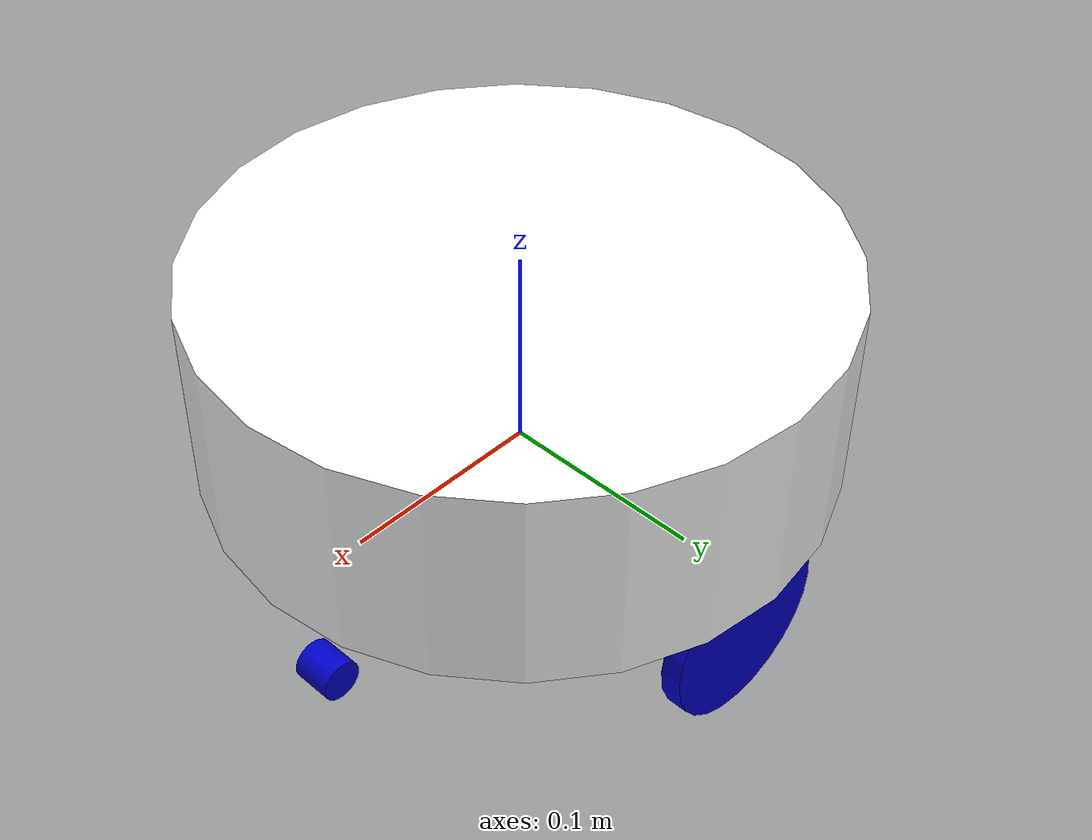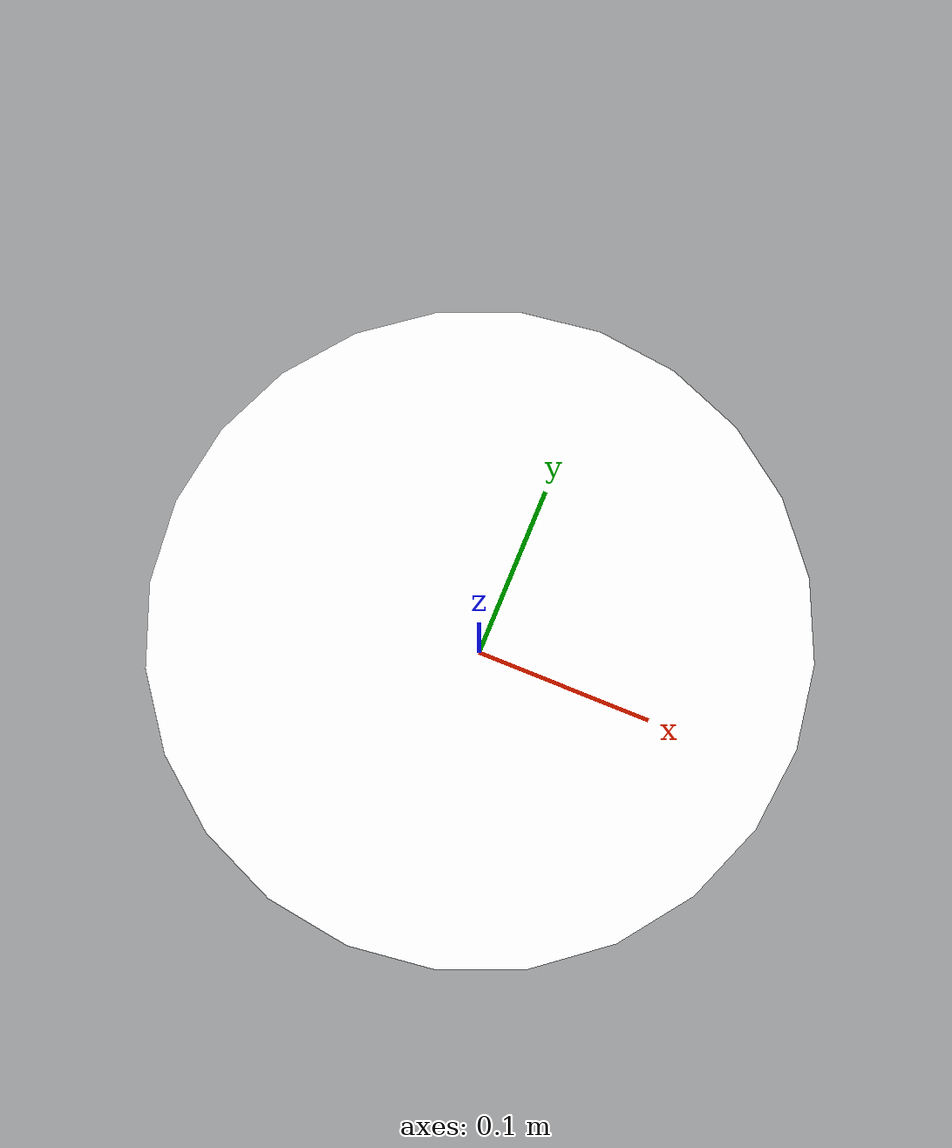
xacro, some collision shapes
<?xml version="1.0"?>
<robot name="myturtle" xmlns:xacro="httpL//ros.org/wiki/xacro">
  <xacro:include filename="$(find myturtle_description)/urdf/myturtle_base_gazebo.urdf.xacro"/>

  <xacro:property name="M_PI" value="3.1415926535897931"/>

  <xacro:property name="base_collision_height" value="0.1"/>
  <xacro:property name="base_collision_radius" value="0.15"/>
  <xacro:property name="wheel_thickness" value="0.01"/> <!-- 1 cm = 0.01 m -->
  <xacro:property name="wheel_radius" value="0.045"/> <!-- diameter = 9 cm -->
  <xacro:property name="wheels_distance" value="0.2644"/>
  <xacro:property name="wheel_center_offset" value="-0.0278"/> <!-- where center of the motor locate at relative to the base plate -->
  <xacro:property name="caster_wheels_distance" value="0.25"/>
  <xacro:property name="caster_wheel_length" value="0.02"/>
  <xacro:property name="caster_wheel_radius" value="0.01"/>
  <xacro:property name="base_offset_from_ground" value="${wheel_radius - wheel_center_offset}"/>
  <xacro:property name="caster_wheel_center_offset" value="-${base_offset_from_ground + (base_collision_height/2) - caster_wheel_radius}"/>

  <link name="base_footprint"/>
  <link name="base_link">
    <visual>
      <geometry>
        <mesh filename="package://myturtle_description/mesh/myturtle_visual.STL"/>
      </geometry>
      <origin xyz="0 0 -${base_collision_height/2}" rpy="${M_PI/2} 0 ${M_PI/2}"/>
      <material name="white">
        <color rgba="1 1 1 1"/>
      </material>
    </visual>

    <collision>
      <geometry>
        <cylinder length="${base_collision_height}" radius="${base_collision_radius}"/>
      </geometry>
    </collision>

    <inertial>
        <!-- COM experimentally determined -->
        <origin xyz="0.01 0 0"/>
        <mass value="2.4"/> <!-- 2.4/2.6 kg for small/big battery pack -->
        <inertia ixx="0.019995" ixy="0.0" ixz="0.0"
                 iyy="0.019995" iyz="0.0"
                 izz="0.03675" />
     </inertial>
  </link>

  <joint name="base_joint" type="fixed">
    <parent link="base_footprint"/>
    <child link="base_link"/>
    <origin xyz="0 0 ${base_collision_height/2}" rpy="0 0 0"/>
  </joint>

  <link name="left_wheel_link">
    <visual>
      <geometry>
        <cylinder length="${wheel_thickness}" radius="${wheel_radius}"/>
      </geometry>
      <origin xyz="0 0 0" rpy="0 0 0"/>
      <material name="blue">
        <color rgba="0 0 0.8 1"/>
      </material>
    </visual>

    <collision>
      <geometry>
        <cylinder length="${wheel_thickness}" radius="${wheel_radius}"/>
      </geometry>
      <origin xyz="0 0 0" rpy="0 0 0"/>
    </collision>

    <inertial>
        <mass value="0.01" />
        <origin xyz="0 0 0" />
        <inertia ixx="0.001" ixy="0.0" ixz="0.0"
                 iyy="0.001" iyz="0.0"
                 izz="0.001" />
    </inertial>
  </link>

  <joint name="left_wheel_joint" type="continuous">
    <parent link="base_link"/>
    <child link="left_wheel_link"/>
    <origin xyz="0 ${wheels_distance/2} ${wheel_center_offset-base_collision_height/2}" rpy="${-M_PI/2} 0 0"/>
    <axis xyz="0 0 1"/>
  </joint>

  <link name="right_wheel_link">
    <visual>
      <geometry>
        <cylinder length="${wheel_thickness}" radius="${wheel_radius}"/>
      </geometry>
      <origin xyz="0 0 0" rpy="0 0 0"/>
      <material name="blue">
        <color rgba="0 0 0.8 1"/>
      </material>
    </visual>

    <collision>
      <geometry>
        <cylinder length="${wheel_thickness}" radius="${wheel_radius}"/>
      </geometry>
      <origin xyz="0 0 0" rpy="0 0 0"/>
    </collision>

    <inertial>
        <mass value="0.01" />
        <origin xyz="0 0 0" />
        <inertia ixx="0.001" ixy="0.0" ixz="0.0"
                 iyy="0.001" iyz="0.0"
                 izz="0.001" />
    </inertial>
  </link>

  <joint name="right_wheel_joint" type="continuous">
    <parent link="base_link"/>
    <child link="right_wheel_link"/>
    <origin xyz="0 -${wheels_distance/2} ${wheel_center_offset-base_collision_height/2}" rpy="${-M_PI/2} 0 0"/>
    <axis xyz="0 0 1"/>
  </joint>

  <link name="front_caster_wheel_link">
    <visual>
      <geometry>
        <cylinder length="${caster_wheel_length}" radius="${caster_wheel_radius}"/>
      </geometry>
      <origin xyz="0 0 0" rpy="0 0 0"/>
      <material name="blue">
        <color rgba="0 0 0.8 1"/>
      </material>
    </visual>

    <collision>
      <geometry>
        <cylinder length="${caster_wheel_length}" radius="${caster_wheel_radius}"/>
      </geometry>
      <origin xyz="0 0 0" rpy="0 0 0"/>
    </collision>

    <inertial>
        <mass value="0.01" />
        <origin xyz="0 0 0" />
        <inertia ixx="0.001" ixy="0.0" ixz="0.0"
                 iyy="0.001" iyz="0.0"
                 izz="0.001" />
    </inertial>
  </link>

  <joint name="front_caster_wheel_joint" type="fixed">
    <parent link="base_link"/>
    <child link="front_caster_wheel_link"/>
    <origin xyz="${caster_wheels_distance/2} 0 ${caster_wheel_center_offset}" rpy="${M_PI/2} 0 0"/>
  </joint>

  <link name="back_caster_wheel_link">
    <visual>
      <geometry>
        <cylinder length="${caster_wheel_length}" radius="${caster_wheel_radius}"/>
      </geometry>
      <origin xyz="0 0 0" rpy="0 0 0"/>
      <material name="blue">
        <color rgba="0 0 0.8 1"/>
      </material>
    </visual>

    <collision>
      <geometry>
        <cylinder length="${caster_wheel_length}" radius="${caster_wheel_radius}"/>
      </geometry>
      <origin xyz="0 0 0" rpy="0 0 0"/>
    </collision>

    <inertial>
        <mass value="0.01" />
        <origin xyz="0 0 0" />
        <inertia ixx="0.001" ixy="0.0" ixz="0.0"
                 iyy="0.001" iyz="0.0"
                 izz="0.001" />
    </inertial>
  </link>

  <joint name="back_caster_wheel_joint" type="fixed">
    <parent link="base_link"/>
    <child link="back_caster_wheel_link"/>
    <origin xyz="-${caster_wheels_distance/2} 0 ${caster_wheel_center_offset}" rpy="${M_PI/2} 0 0"/>
  </joint>

  <!-- Kobuki's sensors -->
    <joint name="gyro_joint" type="fixed">
      <axis xyz="0 1 0"/>
      <origin xyz="0.056 0.062 0.0202" rpy="0 0 0"/>
      <parent link="base_link"/>
      <child link="gyro_link"/>
    </joint>
    <link name="gyro_link">
      <inertial>
        <mass value="0.001"/>
        <origin xyz="0 0 0" rpy="0 0 0"/>
        <inertia ixx="0.0001" ixy="0" ixz="0"
                 iyy="0.000001" iyz="0"
                 izz="0.0001"/>
      </inertial>
    </link>

    <joint name="cliff_sensor_left_joint" type="fixed">
      <origin xyz="0.08734 0.13601 0.0214" rpy="0 ${M_PI/2} 0" />
      <parent link="base_link"/>
      <child link="cliff_sensor_left_link" />
    </joint>
    <link name="cliff_sensor_left_link">
      <inertial>
        <mass value="0.0001" />
        <origin xyz="0 0 0" />
        <inertia ixx="0.0001" ixy="0.0" ixz="0.0"
                 iyy="0.0001" iyz="0.0"
                 izz="0.0001" />
      </inertial>
    </link>

    <joint name="cliff_sensor_right_joint" type="fixed">
      <origin xyz="0.085 -0.13601 0.0214" rpy="0 ${M_PI/2} 0" />
      <parent link="base_link"/>
      <child link="cliff_sensor_right_link" />
    </joint>
    <link name="cliff_sensor_right_link">
      <inertial>
        <mass value="0.0001" />
        <origin xyz="0 0 0" />
        <inertia ixx="0.0001" ixy="0.0" ixz="0.0"
                 iyy="0.0001" iyz="0.0"
                 izz="0.0001" />
      </inertial>
    </link>

    <joint name="cliff_sensor_front_joint" type="fixed">
      <origin xyz="0.156 0.00 0.0214" rpy="0 ${M_PI/2} 0" />
      <parent link="base_link"/>
      <child link="cliff_sensor_front_link" />
    </joint>
    <link name="cliff_sensor_front_link">
      <inertial>
        <mass value="0.0001" />
        <origin xyz="0 0 0" />
        <inertia ixx="0.0001" ixy="0.0" ixz="0.0"
                 iyy="0.0001" iyz="0.0"
                 izz="0.0001" />
      </inertial>
    </link>

    <kobuki_sim/>

</robot>
